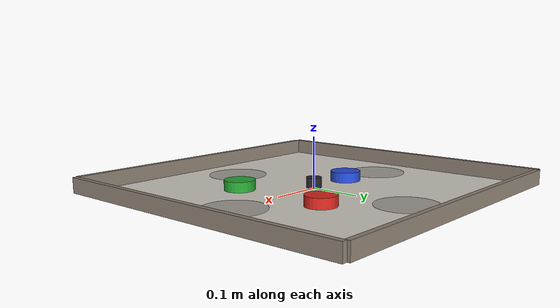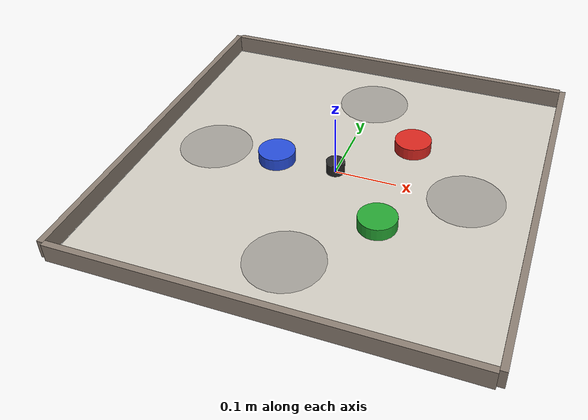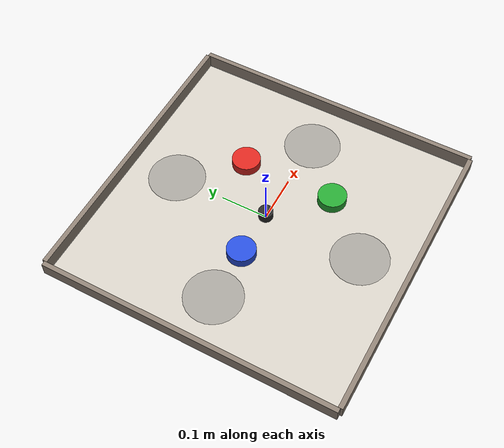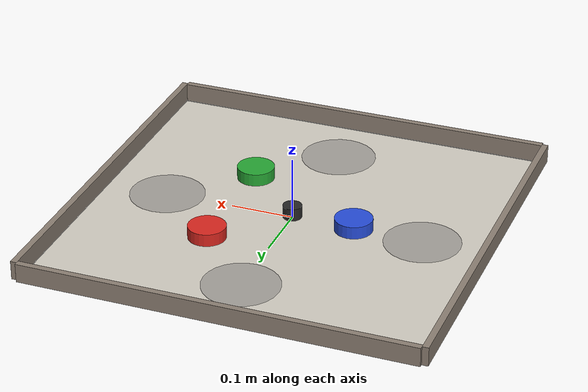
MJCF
<mujoco model="tabletop">
  <compiler angle="radian" autolimits="true"/>
  <option timestep="0.005" integrator="implicitfast"/>

  <visual>
    <headlight ambient=".35 .35 .35" diffuse=".55 .55 .55" specular="0 0 0"/>
    <global offwidth="640" offheight="640"/>
  </visual>

  <default>
    <default class="puck">
      <geom type="cylinder" size="0.03 0.01" mass="0.1" friction="0.4 0.005 0.0001" contype="3" conaffinity="3"/>
    </default>
    <default class="rim">
      <geom type="box" rgba=".55 .5 .45 1" contype="1" conaffinity="1"/>
    </default>
  </default>

  <worldbody>
    <light pos="0 0 1.5" dir="0 0 -1" diffuse=".4 .4 .4"/>
    <geom name="table" type="plane" size="0.31 0.31 0.01" rgba=".82 .8 .76 1" friction="0.4 0.005 0.0001" contype="1" conaffinity="1"/>
    <geom name="rim_px" class="rim" size="0.005 0.315 0.015" pos="0.315 0 0.015"/>
    <geom name="rim_nx" class="rim" size="0.005 0.315 0.015" pos="-0.315 0 0.015"/>
    <geom name="rim_py" class="rim" size="0.31 0.005 0.015" pos="0 0.315 0.015"/>
    <geom name="rim_ny" class="rim" size="0.31 0.005 0.015" pos="0 -0.315 0.015"/>

    <site name="zone_upper" type="cylinder" size="0.06 0.0005" pos="0.21 0 0.0005" rgba=".35 .35 .35 .35"/>
    <site name="zone_lower" type="cylinder" size="0.06 0.0005" pos="-0.21 0 0.0005" rgba=".35 .35 .35 .35"/>
    <site name="zone_left" type="cylinder" size="0.06 0.0005" pos="0 0.21 0.0005" rgba=".35 .35 .35 .35"/>
    <site name="zone_right" type="cylinder" size="0.06 0.0005" pos="0 -0.21 0.0005" rgba=".35 .35 .35 .35"/>

    <camera name="top" pos="0 0 0.9" xyaxes="0 -1 0 1 0 0" fovy="38"/>
    <camera name="top_shifted" pos="0.03 0.0 0.9" xyaxes="0 -1 0 0.99863 0 0.05234" fovy="38"/>

    <body name="pusher" pos="0 0 0.012">
      <joint name="pusher_x" type="slide" axis="1 0 0" range="-0.29 0.29" damping="1"/>
      <joint name="pusher_y" type="slide" axis="0 1 0" range="-0.29 0.29" damping="1"/>
      <geom name="pusher" type="cylinder" size="0.015 0.01" mass="0.5" rgba=".15 .15 .15 1" contype="2" conaffinity="2"/>
    </body>

    <body name="red_puck" pos="0.1 0.1 0.01">
      <freejoint name="red_puck"/>
      <geom name="red_puck" class="puck" rgba=".85 .15 .12 1"/>
    </body>
    <body name="green_puck" pos="0.1 -0.1 0.01">
      <freejoint name="green_puck"/>
      <geom name="green_puck" class="puck" rgba=".15 .65 .2 1"/>
    </body>
    <body name="blue_puck" pos="-0.1 0.0 0.01">
      <freejoint name="blue_puck"/>
      <geom name="blue_puck" class="puck" rgba=".15 .3 .85 1"/>
    </body>
  </worldbody>

  <actuator>
    <velocity name="pusher_vx" joint="pusher_x" kv="40" ctrlrange="-0.25 0.25" forcerange="-15 15"/>
    <velocity name="pusher_vy" joint="pusher_y" kv="40" ctrlrange="-0.25 0.25" forcerange="-15 15"/>
  </actuator>
</mujoco>
